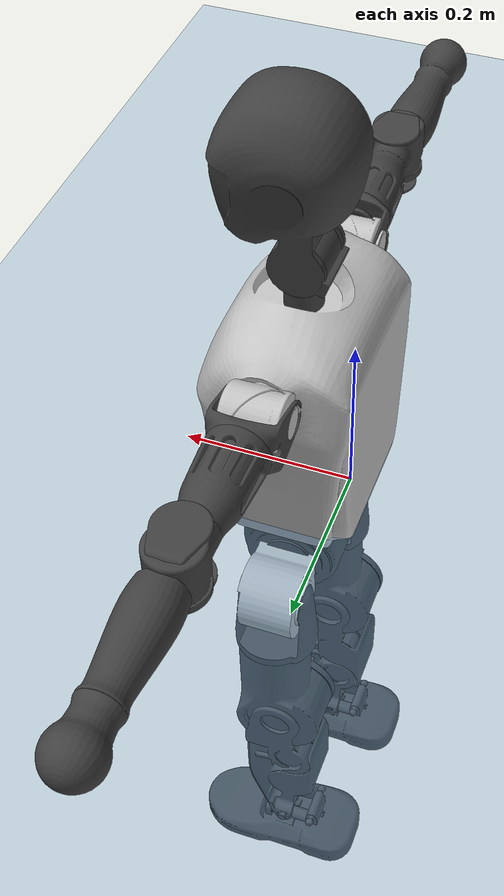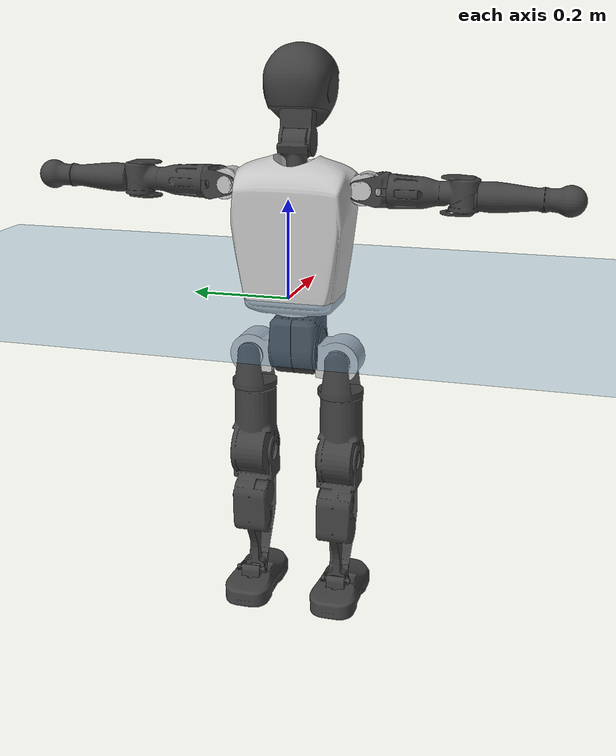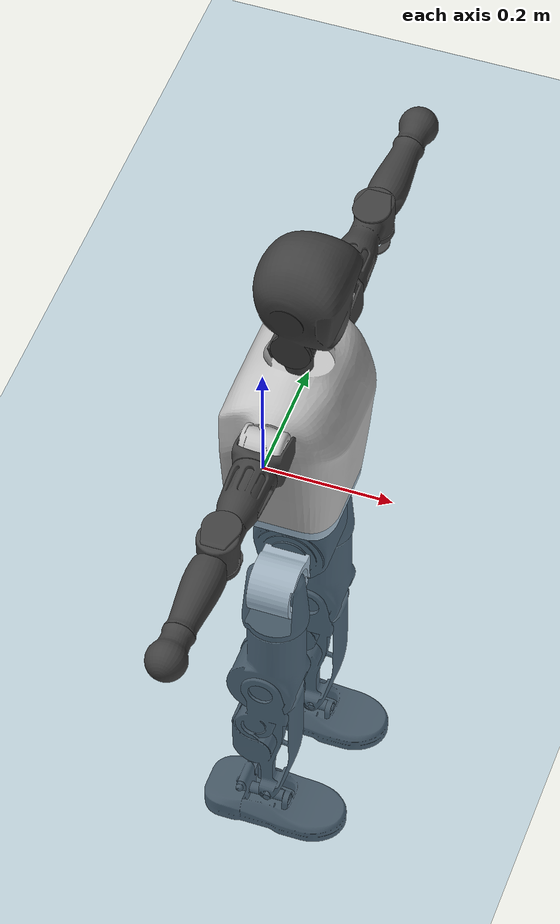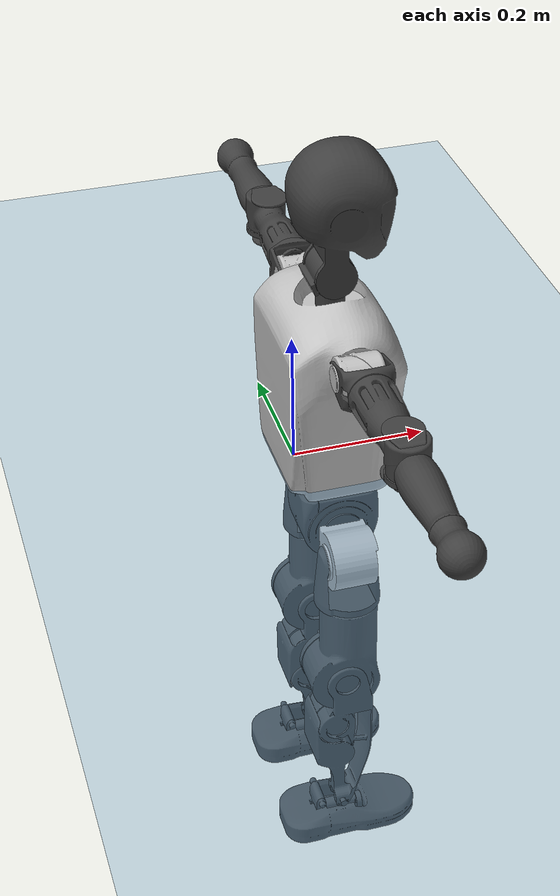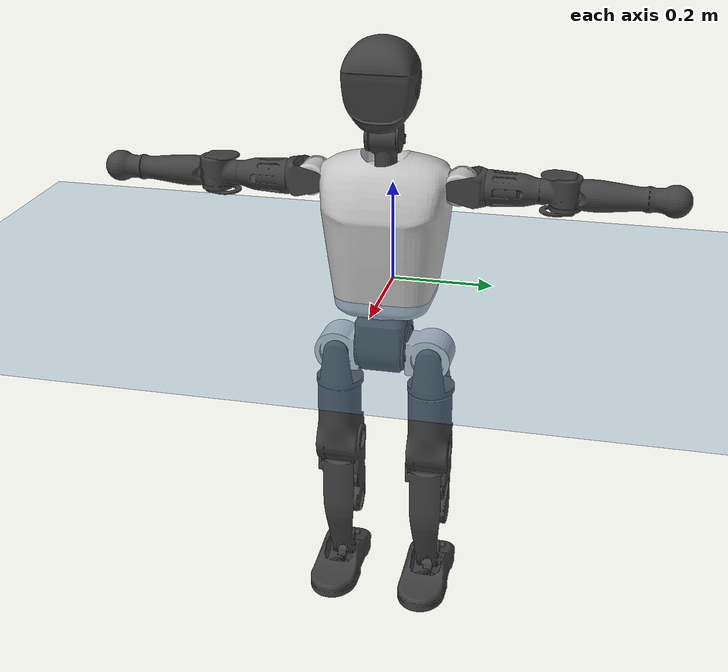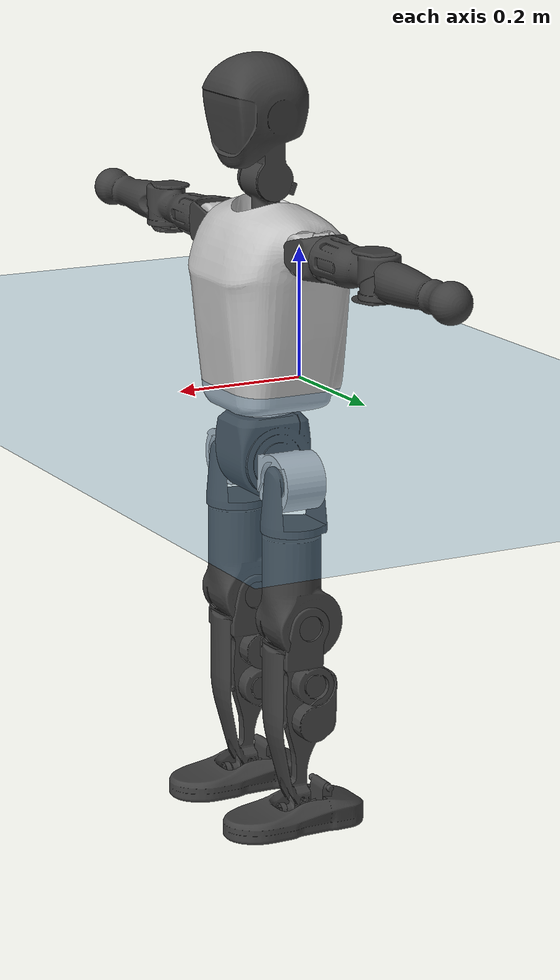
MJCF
<mujoco model="T1">
  <compiler angle="radian" assetdir="assets" balanceinertia="true" inertiafromgeom="false"/>

  <option timestep="0.005" density="1.2" viscosity="2e-05"/>

  <size nkey="1"/>

  <visual>
    <quality shadowsize="8192"/>
    <map shadowclip="0.5"/>
  </visual>

  <default>
    <default class="/">
      <joint armature="0.01" damping="0.01" frictionloss="0.1"/>
      <geom contype="0" conaffinity="0" group="1" solref="-1000 -80"/>
      <site size="0.01 0.005 0.005" group="5"/>
      <general forcelimited="true" biastype="affine" gainprm="25" biasprm="0 -25 -0.6"/>
      <default class="t1">
        <geom rgba="0.25 0.25 0.25 1"/>
        <default class="visual">
          <geom type="mesh" group="2"/>
        </default>
        <default class="collision">
          <geom group="3"/>
        </default>
        <default class="foot">
          <geom size="0.1115 0.05 0.015" type="box" condim="6" group="4" priority="1" solimp="0.015 1 0.015"/>
        </default>
        <default class="reward_collision_sphere">
          <geom group="5" rgba="1 0 0 1"/>
        </default>
      </default>
    </default>
  </default>

  <asset>
    <texture type="skybox" colorspace="auto" name="//unnamed_texture_0" builtin="gradient" rgb1="0.95 0.95 0.95" rgb2="0.95 0.95 0.95" width="100" height="600"/>
    <texture type="2d" colorspace="auto" name="texplane" builtin="checker" rgb1="0.345 0.575 0.748" rgb2="0.345 0.575 0.748" markrgb="1 1 1" width="512" height="512"/>
    <material name="MatPlane" class="/" texture="texplane" texuniform="true" texrepeat="2 2" specular="0.9"/>
    <mesh name="Trunk" class="/" file="Trunk.stl"/>
    <mesh name="H1" class="/" file="H1.stl"/>
    <mesh name="H2" class="/" file="H2.stl"/>
    <mesh name="AL1" class="/" file="AL1.stl"/>
    <mesh name="AL2" class="/" file="AL2.stl"/>
    <mesh name="AL3" class="/" file="AL3.stl"/>
    <mesh name="left_hand_link" class="/" file="left_hand_link.stl"/>
    <mesh name="AR1" class="/" file="AR1.stl"/>
    <mesh name="AR2" class="/" file="AR2.stl"/>
    <mesh name="AR3" class="/" file="AR3.stl"/>
    <mesh name="right_hand_link" class="/" file="right_hand_link.stl"/>
    <mesh name="Waist" class="/" file="Waist.stl"/>
    <mesh name="Hip_Pitch_Left" class="/" file="Hip_Pitch_Left.stl"/>
    <mesh name="Hip_Roll_Left" class="/" file="Hip_Roll_Left.stl"/>
    <mesh name="Hip_Yaw_Left" class="/" file="Hip_Yaw_Left.stl"/>
    <mesh name="Shank_Left" class="/" file="Shank_Left.stl"/>
    <mesh name="Ankle_Cross_Left" class="/" file="Ankle_Cross_Left.stl"/>
    <mesh name="left_foot_link" class="/" file="left_foot_link.stl"/>
    <mesh name="Hip_Pitch_Right" class="/" file="Hip_Pitch_Right.stl"/>
    <mesh name="Hip_Roll_Right" class="/" file="Hip_Roll_Right.stl"/>
    <mesh name="Hip_Yaw_Right" class="/" file="Hip_Yaw_Right.stl"/>
    <mesh name="Shank_Right" class="/" file="Shank_Right.stl"/>
    <mesh name="Ankle_Cross_Right" class="/" file="Ankle_Cross_Right.stl"/>
    <mesh name="right_foot_link" class="/" file="right_foot_link.stl"/>
  </asset>

  <worldbody>
    <geom name="floor" class="/" size="100 100 0.125" type="plane" group="0" material="MatPlane"/>
    <light name="toplight_shadow" class="/" pos="0 0 5" dir="0.0990148 0.0990148 -0.990148" type="directional" ambient="0.04 0.04 0.04" diffuse="0.55 0.55 0.55" specular="0.12 0.12 0.12"/>
    <light name="toplight_fill" class="/" pos="0 0 5" dir="0.0990148 0.0990148 -0.990148" type="directional" castshadow="false" ambient="0.04 0.04 0.04" diffuse="0.3 0.3 0.3" specular="0.08 0.08 0.08"/>
    <body name="trunk" childclass="t1" pos="-0.000130853 -0.00067303 0.000222934" quat="0.999999 0.000525053 0.000287867 -0.000866644">
      <inertial pos="0.0518724 -0.000545138 0.106349" quat="0.999965 0.00327347 -0.00211025 0.00739287" mass="9.87067" diaginertia="0.0754868 0.0403652 0.0612272"/>
      <joint name="//unnamed_joint_0" type="free" armature="0" damping="0" frictionloss="0"/>
      <geom name="//unnamed_geom_1" class="visual" rgba="0.76 0.76 0.76 1" mesh="Trunk"/>
      <geom name="//unnamed_geom_2" class="collision" size="0.0711018 0.0948025 0.142204" pos="0.0570357 0 0.121588" type="box"/>
      <geom name="//unnamed_geom_3" class="reward_collision_sphere" size="0.109023" pos="0.0570357 0 0.101323"/>
      <geom name="//unnamed_geom_4" class="reward_collision_sphere" size="0.0142204" pos="0.0570357 0.0748211 0"/>
      <geom name="//unnamed_geom_5" class="reward_collision_sphere" size="0.0142204" pos="0.0570357 -0.0748211 0"/>
      <geom name="//unnamed_geom_6" class="reward_collision_sphere" size="0.0142204" pos="0.0570357 0.0941865 0.182382"/>
      <geom name="//unnamed_geom_7" class="reward_collision_sphere" size="0.0142204" pos="0.0570357 -0.0941865 0.182382"/>
      <site name="imu" pos="0.00984361 0.000214888 -0.00949615" size="0.00948025"/>
      <camera name="track" pos="0 -1.7605 0" quat="0.707107 0.707107 0 0" mode="trackcom"/>
      <camera name="ego_camera" pos="0.115973 0 0.425557" quat="-0.5 -0.5 0.5 0.5"/>
      <body name="H1" pos="0.0562646 -0.000291694 0.243524" quat="1 -1.04884e-05 0.000143979 0.000193448">
        <inertial pos="-0.000880063 -0.00147313 0.0581488" quat="0.764153 -0.0121426 0.00120871 0.64492" mass="0.373824" diaginertia="0.00018328 0.000116018 0.000159684"/>
        <joint name="AAHead_yaw" pos="0 0 0" axis="-0.00196757 -0.00415497 0.999989" stiffness="0.00175515" range="-1.52911 1.58053" armature="0.010762" damping="0.00881337" frictionloss="0.107356"/>
        <geom name="//unnamed_geom_8" class="visual" mesh="H1"/>
        <body name="H2" pos="-0.00111543 -0.00278015 0.0637301" quat="1 -3.98906e-05 5.10488e-05 7.50715e-05">
          <inertial pos="0.00890274 -0.00203608 0.0972813" quat="0.988408 0.109508 -0.0641705 -0.0833093" mass="0.54129" diaginertia="0.00157771 0.000987296 0.001842"/>
          <joint name="Head_pitch" pos="0 0 0" axis="-0.001588 -0.999991 -0.00402686" range="-1.22394 0.369169" armature="0.0100881" damping="0" frictionloss="0.0918309"/>
          <geom name="//unnamed_geom_9" class="visual" mesh="H2"/>
          <geom name="//unnamed_geom_10" class="collision" size="0.075842" pos="0.00950595 0 0.111455"/>
          <geom name="//unnamed_geom_11" class="reward_collision_sphere" size="0.0853222" pos="0.0190119 0 0.101323"/>
        </body>
      </body>
      <body name="AL1" pos="0.0547237 0.0951604 0.2194" quat="0.999999 0.000996945 0.00105666 -0.000780361">
        <inertial pos="-0.00265866 0.0393923 -0.000280523" quat="0.503727 0.495928 -0.504789 0.495482" mass="0.446521" diaginertia="0.00105237 0.000653687 0.000299642"/>
        <joint name="Left_Shoulder_Pitch" pos="0 0 0" axis="0.00276421 0.999905 -0.0135255" stiffness="0.00227644" range="-3.32545 1.27579" armature="0.00954367" damping="0" frictionloss="0.0985418"/>
        <geom name="//unnamed_geom_12" class="visual" rgba="0.76 0.76 0.76 1" mesh="AL1"/>
        <body name="AL2" pos="-0.00125016 0.0416299 -0.000455886" quat="1 5.81061e-05 0.000161948 4.70644e-05">
          <inertial pos="0.0037204 0.0360999 -0.000893642" quat="0.48995 0.512395 -0.484377 0.51262" mass="0.138865" diaginertia="0.000318777 0.000183172 0.000189565"/>
          <joint name="Left_Shoulder_Roll" pos="0 0 0" axis="-1 -0.000106827 -1.43969e-05" range="-1.56164 1.74903" armature="0.0108003" damping="0.00861027" frictionloss="0.0957989"/>
          <geom name="//unnamed_geom_13" class="visual" mesh="AL2"/>
          <body name="AL3" pos="0.000354662 0.0531187 0.000749851" quat="1 5.39906e-05 -0.000549751 0.000102406">
            <inertial pos="0.00216724 0.0724332 -0.000809581" quat="0.705936 0.708258 0.00388346 -0.00329126" mass="0.816844" diaginertia="0.0100119 0.0066246 0.000626923"/>
            <joint name="Left_Elbow_Pitch" pos="0 0 0" axis="0.0017471 -0.999998 0.00136312" range="-2.32762 2.27112" armature="0.0107174" damping="0.0142204" frictionloss="0.0921242"/>
            <geom name="//unnamed_geom_14" class="visual" mesh="AL3"/>
            <geom name="//unnamed_geom_15" class="collision" size="0.0284407 0.0711018" pos="0 0.0440124 0" quat="0.707105 0.707108 0 0" type="cylinder"/>
            <geom name="//unnamed_geom_16" class="reward_collision_sphere" size="0.0341289"/>
            <body name="left_hand_link" pos="0.00173739 0.128528 -0.00105053" quat="0.999999 0.000388992 -0.000432621 -0.0011892">
              <inertial pos="-0.00273278 0.0966768 0.000829282" quat="0.704604 0.709596 0.00117239 -0.00234646" mass="0.277819" diaginertia="0.00611026 0.00428513 0.000236584"/>
              <joint name="Left_Elbow_Yaw" pos="0 0 0" axis="0.00524378 -0.00132697 0.999985" range="-2.45104 -0.0493766" armature="0.00982208" damping="0.0139339" frictionloss="0.0966919"/>
              <geom name="//unnamed_geom_17" class="visual" mesh="left_hand_link"/>
              <geom name="//unnamed_geom_18" class="collision" size="0.0284407 0.0829522" pos="0 0.114432 0" quat="0.707105 0.707108 0 0" type="cylinder"/>
              <geom name="//unnamed_geom_19" class="reward_collision_sphere" size="0.0474012"/>
              <geom name="//unnamed_geom_20" class="reward_collision_sphere" size="0.0331809" pos="0 0.0968273 0"/>
              <geom name="//unnamed_geom_21" class="reward_collision_sphere" size="0.0331809" pos="0 0.189253 0"/>
            </body>
          </body>
        </body>
      </body>
      <body name="AR1" pos="0.0539897 -0.0952396 0.219935" quat="1 6.21515e-05 0.000629716 -0.000172851">
        <inertial pos="-0.00225391 -0.0423853 0.000842254" quat="0.506416 0.490512 -0.507836 0.495018" mass="0.433187" diaginertia="0.00102135 0.000658729 0.000302266"/>
        <joint name="Right_Shoulder_Pitch" pos="0 0 0" axis="0.014722 -0.999871 -0.00649471" range="-1.22333 3.29432" armature="0.010697" damping="0.0122269" frictionloss="0.0927097"/>
        <geom name="//unnamed_geom_22" class="visual" rgba="0.76 0.76 0.76 1" mesh="AR1"/>
        <body name="AR2" pos="0.00222859 -0.0384944 -0.00120987" quat="0.999999 0.00138738 -0.000466989 6.22573e-05">
          <inertial pos="0.00227076 -0.0330869 0.00127726" quat="0.511649 0.487735 -0.511238 0.488841" mass="0.131841" diaginertia="0.000311866 0.000188738 0.000191248"/>
          <joint name="Right_Shoulder_Roll" pos="0 0 0" axis="-0.999985 -0.00466536 0.00296303" range="-1.7465 1.56093" armature="0.00936597" damping="0.00652393" frictionloss="0.107015"/>
          <geom name="//unnamed_geom_23" class="visual" mesh="AR2"/>
          <body name="AR3" pos="0.000987086 -0.0542669 -0.00249602" quat="1 -5.05315e-06 7.14861e-05 4.01703e-07">
            <inertial pos="3.9604e-05 -0.0779212 0.000217085" quat="0.709012 0.705081 0.0123636 -0.00323468" mass="0.864519" diaginertia="0.00996682 0.00682608 0.000681974"/>
            <joint name="Right_Elbow_Pitch" pos="0 0 0" axis="0.0108578 0.999922 -0.00609275" range="-2.32245 2.24514" armature="0.00809914" damping="0.00636435" frictionloss="0.102385"/>
            <geom name="//unnamed_geom_24" class="visual" mesh="AR3"/>
            <geom name="//unnamed_geom_25" class="collision" size="0.0284407 0.0711018" pos="0 -0.0440124 0" quat="0.707105 0.707108 0 0" type="cylinder"/>
            <geom name="//unnamed_geom_26" class="reward_collision_sphere" size="0.0341289"/>
            <body name="right_hand_link" pos="-0.000851674 -0.129627 -0.00177484" quat="0.999999 0.000985876 -0.000126573 -0.000489587">
              <inertial pos="-0.000151788 -0.0967934 0.00370449" quat="0.706292 0.707921 0.00026147 0.000270868" mass="0.28027" diaginertia="0.00630888 0.00428145 0.00022859"/>
              <joint name="Right_Elbow_Yaw" pos="0 0 0" axis="-0.00326545 0.00237189 0.999992" range="-0.00952658 2.47149" armature="0.0108317" damping="0" frictionloss="0.104554"/>
              <geom name="//unnamed_geom_27" class="visual" mesh="right_hand_link"/>
              <geom name="//unnamed_geom_28" class="collision" size="0.0284407 0.0829522" pos="0 -0.114432 0" quat="0.707105 0.707108 0 0" type="cylinder"/>
              <geom name="//unnamed_geom_29" class="reward_collision_sphere" size="0.0474012"/>
              <geom name="//unnamed_geom_30" class="reward_collision_sphere" size="0.0331809" pos="0 -0.0968273 0"/>
              <geom name="//unnamed_geom_31" class="reward_collision_sphere" size="0.0331809" pos="0 -0.189253 0"/>
            </body>
          </body>
        </body>
      </body>
      <body name="Waist" pos="0.0596386 -0.00386969 -0.114093" quat="1 -6.42815e-05 -0.000101536 0.000596283">
        <inertial pos="-0.000132542 0.000389287 0.00649194" quat="0.983869 0.000802064 -0.178205 0.0156216" mass="2.12643" diaginertia="0.00399513 0.00270726 0.00491988"/>
        <joint name="Waist" pos="0 0 0" axis="0.0127148 0.00194342 0.999917" range="-1.58934 1.51761" armature="0.00977251" damping="0.015867" frictionloss="0.107015"/>
        <geom name="//unnamed_geom_32" class="visual" mesh="Waist"/>
        <body name="Hip_Pitch_Left" pos="0.000574127 0.0945138 0.000161606" quat="1 3.58641e-05 3.25822e-05 3.03325e-05">
          <inertial pos="0.000672355 -0.00763668 -0.018942" quat="0.976043 0.216976 0.015427 0.00491637" mass="0.875786" diaginertia="0.00139599 0.000798783 0.001344"/>
          <joint name="Left_Hip_Pitch" pos="0 0 0" axis="-0.00987925 0.999893 -0.010819" range="-1.81035 1.62446" armature="0.00986467" damping="0" frictionloss="0.0922167"/>
          <geom name="//unnamed_geom_33" class="visual" rgba="0.76 0.76 0.76 1" mesh="Hip_Pitch_Left"/>
          <body name="Hip_Roll_Left" pos="0.00102159 0.00220566 -0.0186228" quat="0.999999 -0.000206765 0.000444077 0.00142995">
            <inertial pos="-0.00130763 2.13348e-05 -0.0551777" quat="0.709044 -0.00806674 -0.00512227 0.705099" mass="0.321295" diaginertia="0.00135143 0.000779678 0.000532003"/>
            <joint name="Left_Hip_Roll" pos="0 0 0" axis="-0.999939 -0.00771274 0.0078691" stiffness="0.00682787" range="-1.56737 0.192338" armature="0.00918623" damping="0.014384" frictionloss="0.0996923"/>
            <geom name="//unnamed_geom_34" class="visual" mesh="Hip_Roll_Left"/>
            <geom name="//unnamed_geom_35" class="reward_collision_sphere" size="0.0521414"/>
            <body name="Hip_Yaw_Left" pos="0.000822231 -0.000849495 -0.0840649" quat="1 -0.000165067 0.00011919 1.7495e-05">
              <inertial pos="-0.0062172 -0.00167863 -0.0907921" quat="0.6936 -0.0280047 -0.0204537 0.719525" mass="1.78315" diaginertia="0.0198833 0.0130562 0.00267352"/>
              <joint name="Left_Hip_Yaw" pos="0 0 0" axis="0.00203183 -0.00391984 -0.99999" range="-1.05264 0.998074" armature="0.00947902" damping="0.0107034" frictionloss="0.0944981"/>
              <geom name="//unnamed_geom_36" class="visual" mesh="Hip_Yaw_Left"/>
              <geom name="//unnamed_geom_37" class="collision" size="0.0474012 0.075842" type="cylinder"/>
              <body name="Shank_Left" pos="-0.0118944 -0.00247591 -0.136907" quat="1 -0.000273996 -0.000241157 -0.000158238">
                <inertial pos="-0.00537303 -0.00157832 -0.12602" quat="0.997231 -0.00942505 -0.0288894 0.0678745" mass="1.51714" diaginertia="0.0273222 0.0184398 0.00194931"/>
                <joint name="Left_Knee_Pitch" pos="0 0 0" axis="-0.00329339 0.999983 -0.00489617" range="-0.0127436 2.32483" armature="0.0107368" damping="0" frictionloss="0.0998317"/>
                <geom name="//unnamed_geom_38" class="visual" mesh="Shank_Left"/>
                <geom name="//unnamed_geom_39" class="collision" size="0.0474012 0.0711018" pos="0 0 -0.121588" type="cylinder"/>
                <geom name="//unnamed_geom_40" class="reward_collision_sphere" size="0.0616216"/>
                <body name="Ankle_Cross_Left" pos="0.00189847 0.00188767 -0.28667" quat="0.999999 0.00107267 -0.00021831 0.00079761">
                  <inertial pos="-0.00382844 -0.00238298 -0.00762099" quat="0.442299 0.55963 0.544993 0.440646" mass="0.0619275" diaginertia="2.22742e-05 1.38965e-05 1.23138e-05"/>
                  <joint name="Left_Ankle_Pitch" pos="0 0 0" axis="-0.00504349 0.999963 -0.00691171" range="-0.884461 0.333627" armature="0.00973448" damping="0.00605301" frictionloss="0.0946689"/>
                  <geom name="//unnamed_geom_41" class="visual" mesh="Ankle_Cross_Left"/>
                  <body name="left_foot_link" pos="-0.00250823 -0.0028846 -0.0120565" quat="1 -0.000155356 -0.000115511 0.00010112">
                    <inertial pos="0.00232515 4.41534e-05 -0.00657112" quat="-0.00391308 0.618628 0.00208669 0.785671" mass="0.591032" diaginertia="0.00214992 0.00126185 0.00237494"/>
                    <joint name="Left_Ankle_Roll" pos="0 0 0" axis="-1 -3.27348e-05 0.000932447" stiffness="0.00629583" range="-0.445706 0.436335" armature="0.00810674" damping="0.00193941" frictionloss="0.0935703"/>
                    <geom name="//unnamed_geom_42" class="visual" mesh="left_foot_link"/>
                    <geom name="left_foot" class="foot" size="0.0999764 0.0460809 0.0136283" pos="0.00950595 0 -0.0151985"/>
                    <geom name="//unnamed_geom_44" class="reward_collision_sphere" size="0.0492973" pos="0.00950595 0 -0.0151985"/>
                    <geom name="//unnamed_geom_45" class="reward_collision_sphere" size="0.0284407" pos="0.0903065 -0.0202457 -0.0151985"/>
                    <geom name="//unnamed_geom_46" class="reward_collision_sphere" size="0.0284407" pos="-0.0665416 -0.0202457 -0.0151985"/>
                    <site name="left_foot" class="foot" pos="0.00950595 0 -0.0151985" size="0.00948025"/>
                  </body>
                </body>
              </body>
            </body>
          </body>
        </body>
        <body name="Hip_Pitch_Right" pos="-0.00273571 -0.0922618 -0.00130879" quat="0.999999 -0.00140497 0.000410661 2.1647e-05">
          <inertial pos="0.00132013 0.00412103 -0.0180851" quat="0.974236 -0.225235 0.00970257 -0.00630848" mass="0.855581" diaginertia="0.00135458 0.000750959 0.00129895"/>
          <joint name="Right_Hip_Pitch" pos="0 0 0" axis="-0.00160508 -0.999999 -0.000226388" range="-1.61226 1.78829" armature="0.00924338" damping="0.0119876" frictionloss="0.107608"/>
          <geom name="//unnamed_geom_47" class="visual" rgba="0.76 0.76 0.76 1" mesh="Hip_Pitch_Right"/>
          <body name="Hip_Roll_Right" pos="-0.00103922 1.82555e-05 -0.0199278" quat="1 -0.000424395 -5.77347e-05 -3.00777e-05">
            <inertial pos="-0.00156063 0.0025576 -0.057057" quat="0.707066 -0.00590467 -0.0049951 0.707105" mass="0.332236" diaginertia="0.00138588 0.000799596 0.000547727"/>
            <joint name="Right_Hip_Roll" pos="0 0 0" axis="-0.999981 0.00446847 0.00425516" stiffness="0.00154675" range="-0.203556 1.57336" armature="0.00958117" damping="0.00583056" frictionloss="0.0923948"/>
            <geom name="//unnamed_geom_48" class="visual" mesh="Hip_Roll_Right"/>
            <geom name="//unnamed_geom_49" class="reward_collision_sphere" size="0.0521414"/>
            <body name="Hip_Yaw_Right" pos="-0.000417822 -0.002119 -0.0814495" quat="1 6.21084e-05 -5.49728e-05 0.000152866">
              <inertial pos="-0.00522091 -0.00169006 -0.0915848" quat="0.714655 -0.0312418 -0.033415 0.69798" mass="1.83402" diaginertia="0.0205551 0.0132996 0.00280497"/>
              <joint name="Right_Hip_Yaw" pos="0 0 0" axis="-0.00457651 -0.0028511 -0.999985" stiffness="0.00411765" range="-0.979397 0.951396" armature="0.0082987" damping="0.0201259" frictionloss="0.107622"/>
              <geom name="//unnamed_geom_50" class="visual" mesh="Hip_Yaw_Right"/>
              <geom name="//unnamed_geom_51" class="collision" size="0.0474012 0.075842" type="cylinder"/>
              <body name="Shank_Right" pos="-0.0123095 0.00236865 -0.13576" quat="0.999999 0.000693015 -2.44119e-05 0.00115847">
                <inertial pos="-0.00568469 0.00222702 -0.121622" quat="0.999258 -0.00297237 -0.030387 -0.0234989" mass="1.47876" diaginertia="0.0268421 0.0184228 0.00216439"/>
                <joint name="Right_Knee_Pitch" pos="0 0 0" axis="0.000363899 -1 -0.000135011" stiffness="0.000611378" range="-2.28899 -0.0566186" armature="0.00987129" damping="0.0161709" frictionloss="0.0963777"/>
                <geom name="//unnamed_geom_52" class="visual" mesh="Shank_Right"/>
                <geom name="//unnamed_geom_53" class="collision" size="0.0474012 0.0711018" pos="0 0 -0.121588" type="cylinder"/>
                <geom name="//unnamed_geom_54" class="reward_collision_sphere" size="0.0616216"/>
                <body name="Ankle_Cross_Right" pos="0.00186577 -0.00308818 -0.2842" quat="0.999999 -0.000390771 -0.00022462 -0.0011981">
                  <inertial pos="-0.00315959 0.000818974 -0.00591337" quat="0.445384 0.549954 0.548216 0.445694" mass="0.0624692" diaginertia="2.22002e-05 1.35238e-05 1.17183e-05"/>
                  <joint name="Right_Ankle_Pitch" pos="0 0 0" axis="-0.00214648 -0.99998 0.00601542" range="-0.400855 0.872215" armature="0.00958315" damping="0.00602704" frictionloss="0.098195"/>
                  <geom name="//unnamed_geom_55" class="visual" mesh="Ankle_Cross_Right"/>
                  <body name="right_foot_link" pos="0.000878249 -0.00332421 -0.0125196" quat="1 -0.000147508 0.000348039 -6.20106e-05">
                    <inertial pos="-0.000243285 -0.000828632 -0.0116938" quat="0.00302748 0.617582 0.00125537 0.7865" mass="0.587117" diaginertia="0.00209078 0.00125787 0.0022787"/>
                    <joint name="Right_Ankle_Roll" pos="0 0 0" axis="-0.999973 -0.00719691 -0.00126717" range="-0.388071 0.443072" armature="0.0106965" damping="0.00674701" frictionloss="0.0855454"/>
                    <geom name="//unnamed_geom_56" class="visual" mesh="right_foot_link"/>
                    <geom name="right_foot" class="foot" size="0.0814524 0.0450367 0.0132458" pos="0.00950595 0 -0.0151985"/>
                    <geom name="//unnamed_geom_58" class="reward_collision_sphere" size="0.037921"/>
                    <geom name="//unnamed_geom_59" class="reward_collision_sphere" size="0.0284407" pos="0.00950595 0 -0.0151985"/>
                    <geom name="//unnamed_geom_60" class="reward_collision_sphere" size="0.0284407" pos="0.0903065 0.0202457 -0.0151985"/>
                    <geom name="//unnamed_geom_61" class="reward_collision_sphere" size="0.0284407" pos="-0.0665416 0.0202457 -0.0151985"/>
                    <site name="right_foot" class="foot" pos="0.00950595 0 -0.0151985" size="0.00948025"/>
                  </body>
                </body>
              </body>
            </body>
          </body>
        </body>
      </body>
    </body>
  </worldbody>

  <contact>
    <pair class="/" geom1="floor" geom2="left_foot" name="//unnamed_contact_0"/>
    <pair class="/" geom1="floor" geom2="right_foot" name="//unnamed_contact_1"/>
  </contact>

  <actuator>
    <general name="AAHead_yaw" class="/" joint="AAHead_yaw" forcerange="-6.3547 6.3547" gainprm="24.1814" biasprm="0 -24.1814 -0.571295"/>
    <general name="Head_pitch" class="/" joint="Head_pitch" forcerange="-7.09475 7.09475" gainprm="24.1814" biasprm="0 -24.1814 -0.571295"/>
    <general name="Left_Shoulder_Pitch" class="/" joint="Left_Shoulder_Pitch" forcerange="-17.7039 17.7039" gainprm="24.1814" biasprm="0 -24.1814 -0.571295"/>
    <general name="Left_Shoulder_Roll" class="/" joint="Left_Shoulder_Roll" forcerange="-18.6023 18.6023" gainprm="24.1814" biasprm="0 -24.1814 -0.571295"/>
    <general name="Left_Elbow_Pitch" class="/" joint="Left_Elbow_Pitch" forcerange="-17.1443 17.1443" gainprm="24.1814" biasprm="0 -24.1814 -0.571295"/>
    <general name="Left_Elbow_Yaw" class="/" joint="Left_Elbow_Yaw" forcerange="-17.6477 17.6477" gainprm="24.1814" biasprm="0 -24.1814 -0.571295"/>
    <general name="Right_Shoulder_Pitch" class="/" joint="Right_Shoulder_Pitch" forcerange="-17.1443 17.1443" gainprm="24.1814" biasprm="0 -24.1814 -0.571295"/>
    <general name="Right_Shoulder_Roll" class="/" joint="Right_Shoulder_Roll" forcerange="-17.4735 17.4735" gainprm="24.1814" biasprm="0 -24.1814 -0.571295"/>
    <general name="Right_Elbow_Pitch" class="/" joint="Right_Elbow_Pitch" forcerange="-16.38 16.38" gainprm="24.1814" biasprm="0 -24.1814 -0.571295"/>
    <general name="Right_Elbow_Yaw" class="/" joint="Right_Elbow_Yaw" forcerange="-17.7501 17.7501" gainprm="24.1814" biasprm="0 -24.1814 -0.571295"/>
    <general name="Waist" class="/" joint="Waist" forcerange="-25.9586 25.9586" gainprm="24.1814" biasprm="0 -24.1814 -0.571295"/>
    <general name="Left_Hip_Pitch" class="/" joint="Left_Hip_Pitch" forcerange="-43.7094 43.7094" gainprm="24.1814" biasprm="0 -24.1814 -0.571295"/>
    <general name="Left_Hip_Roll" class="/" joint="Left_Hip_Roll" forcerange="-27.8876 27.8876" gainprm="24.1814" biasprm="0 -24.1814 -0.571295"/>
    <general name="Left_Hip_Yaw" class="/" joint="Left_Hip_Yaw" forcerange="-29.5748 29.5748" gainprm="24.1814" biasprm="0 -24.1814 -0.571295"/>
    <general name="Left_Knee_Pitch" class="/" joint="Left_Knee_Pitch" forcerange="-51.3009 51.3009" gainprm="24.1814" biasprm="0 -24.1814 -0.571295"/>
    <general name="Left_Ankle_Pitch" class="/" joint="Left_Ankle_Pitch" forcerange="-20.8647 20.8647" gainprm="24.1814" biasprm="0 -24.1814 -0.571295"/>
    <general name="Left_Ankle_Roll" class="/" joint="Left_Ankle_Roll" forcerange="-12.8779 12.8779" gainprm="24.1814" biasprm="0 -24.1814 -0.571295"/>
    <general name="Right_Hip_Pitch" class="/" joint="Right_Hip_Pitch" forcerange="-42.6106 42.6106" gainprm="24.1814" biasprm="0 -24.1814 -0.571295"/>
    <general name="Right_Hip_Roll" class="/" joint="Right_Hip_Roll" forcerange="-25.8222 25.8222" gainprm="24.1814" biasprm="0 -24.1814 -0.571295"/>
    <general name="Right_Hip_Yaw" class="/" joint="Right_Hip_Yaw" forcerange="-31.3728 31.3728" gainprm="24.1814" biasprm="0 -24.1814 -0.571295"/>
    <general name="Right_Knee_Pitch" class="/" joint="Right_Knee_Pitch" forcerange="-54.9425 54.9425" gainprm="24.1814" biasprm="0 -24.1814 -0.571295"/>
    <general name="Right_Ankle_Pitch" class="/" joint="Right_Ankle_Pitch" forcerange="-19.1867 19.1867" gainprm="24.1814" biasprm="0 -24.1814 -0.571295"/>
    <general name="Right_Ankle_Roll" class="/" joint="Right_Ankle_Roll" forcerange="-14.3754 14.3754" gainprm="24.1814" biasprm="0 -24.1814 -0.571295"/>
  </actuator>

  <sensor>
    <gyro site="imu" name="imu_angular_velocity"/>
    <velocimeter site="imu" name="imu_linear_velocity"/>
    <framelinvel objtype="site" objname="left_foot" name="left_foot_global_linear_velocity"/>
    <framelinvel objtype="site" objname="right_foot" name="right_foot_global_linear_velocity"/>
  </sensor>

  <keyframe>
    <key name="home" qpos="0 0 0.6385 1 0 0 0 0 0 0 1.4 0 -0.4 0 -1.4 0 0.4 0 -0.4 0 0 0.8 -0.4 0 0.4 0 0 -0.8 0.4 0"/>
  </keyframe>
</mujoco>
